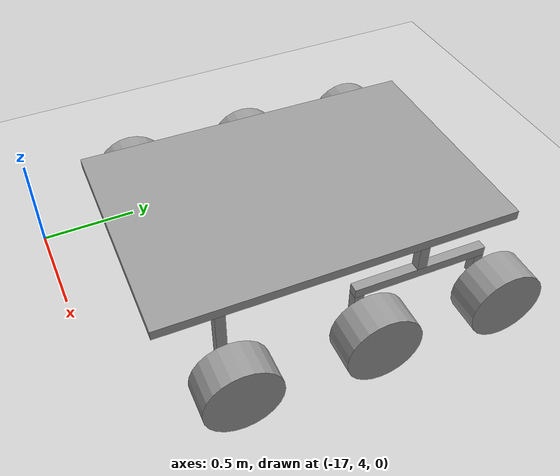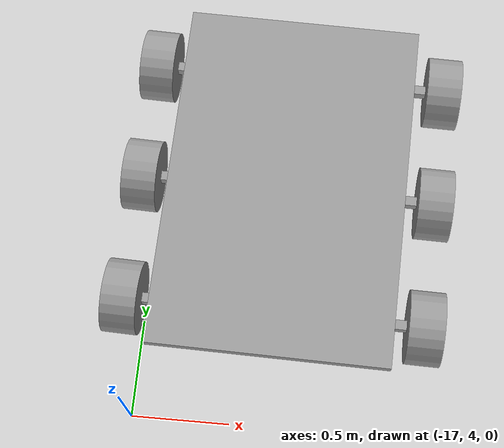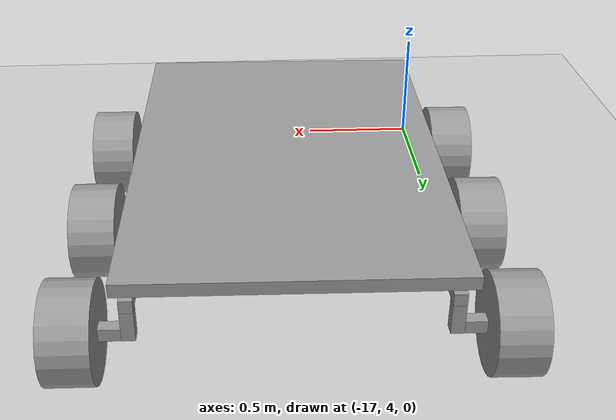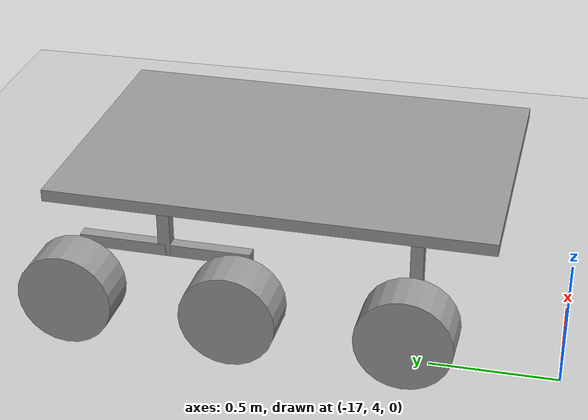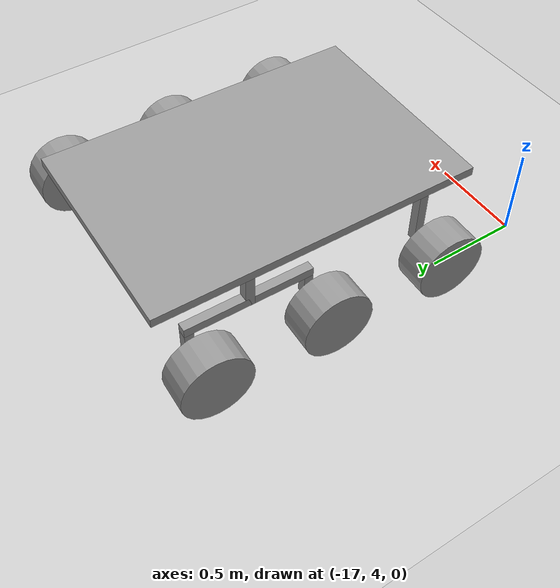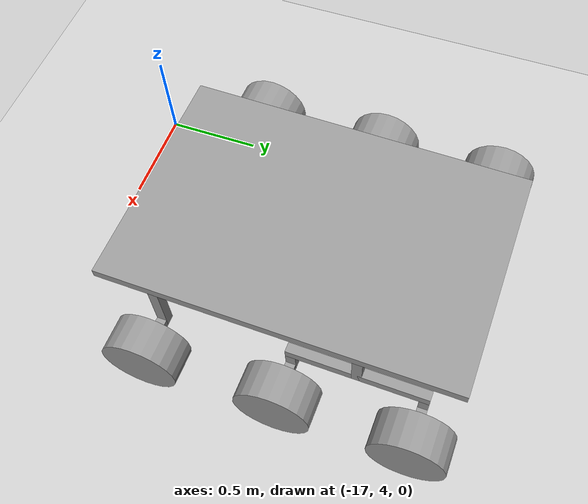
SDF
<sdf version="1.6">
 <world name="default">
  <model name="ground_plane">
   <static>1</static>
   <link name="link">
    <collision name="collision">
     <geometry><plane><normal>0 0 1</normal><size>100 100</size></plane></geometry>
     <surface><friction><ode><mu>100</mu><mu2>50</mu2></ode></friction></surface>
    </collision>
    <visual name="visual">
     <cast_shadows>0</cast_shadows>
     <geometry><plane><normal>0 0 1</normal><size>100 100</size></plane></geometry>
     <material>
      <script><uri>file://media/materials/scripts/gazebo.material</uri><name>Gazebo/Grey</name></script>
     </material>
    </visual>
   </link>
  </model>
  <model name="model1">
   <link name="link_0">
    <inertial>
     <mass>1</mass>
     <inertia>
      <ixx>0.166667</ixx>
      <ixy>0</ixy>
      <ixz>0</ixz>
      <iyy>0.166667</iyy>
      <iyz>0</iyz>
      <izz>0.166667</izz>
     </inertia>
    </inertial>
    <pose>0.453204 0.202085 0.600179 0 -0 0</pose>
    <visual name="visual">
     <geometry><box><size>1.2 1.8 0.05</size></box></geometry>
     <material>
      <lighting>1</lighting>
      <script><uri>file://media/materials/scripts/gazebo.material</uri><name>Gazebo/Grey</name></script>
      <shader type="pixel"><normal_map>__default__</normal_map></shader>
      <ambient>0.3 0.3 0.3 1</ambient>
      <diffuse>0.7 0.7 0.7 1</diffuse>
      <specular>0.01 0.01 0.01 1</specular>
      <emissive>0 0 0 1</emissive>
     </material>
    </visual>
    <collision name="collision">
     <geometry><box><size>1.2 1.8 0.05</size></box></geometry>
     <surface>
      <friction>
       <ode><mu>1</mu><mu2>1</mu2><fdir1>0 0 0</fdir1><slip1>0</slip1><slip2>0</slip2></ode>
       <torsional>
        <coefficient>1</coefficient>
        <patch_radius>0</patch_radius>
        <surface_radius>0</surface_radius>
        <use_patch_radius>1</use_patch_radius>
        <ode><slip>0</slip></ode>
       </torsional>
      </friction>
      <bounce><restitution_coefficient>0</restitution_coefficient><threshold>1e+06</threshold></bounce>
      <contact>
       <collide_without_contact>0</collide_without_contact>
       <collide_without_contact_bitmask>1</collide_without_contact_bitmask>
       <collide_bitmask>1</collide_bitmask>
       <ode>
        <soft_cfm>0</soft_cfm>
        <soft_erp>0.2</soft_erp>
        <kp>1e+13</kp>
        <kd>1</kd>
        <max_vel>0.01</max_vel>
        <min_depth>0</min_depth>
       </ode>
       <bullet>
        <split_impulse>1</split_impulse>
        <split_impulse_penetration_threshold>-0.01</split_impulse_penetration_threshold>
        <soft_cfm>0</soft_cfm>
        <soft_erp>0.2</soft_erp>
        <kp>1e+13</kp>
        <kd>1</kd>
       </bullet>
      </contact>
     </surface>
    </collision>
   </link>
   <link name="link_0_0_clone_clone_1">
    <inertial>
     <mass>1</mass>
     <inertia><ixx>0.145833</ixx><ixy>0</ixy><ixz>0</ixz><iyy>0.145833</iyy><iyz>0</iyz><izz>0.125</izz></inertia>
    </inertial>
    <pose>1.2232 -0.397915 0.300179 -3.14153 1.57079 -3.14153</pose>
    <visual name="visual_0">
     <geometry><cylinder><radius>0.19</radius><length>0.18</length></cylinder></geometry>
     <material>
      <lighting>1</lighting>
      <script><uri>file://media/materials/scripts/gazebo.material</uri><name>Gazebo/Grey</name></script>
      <shader type="pixel"><normal_map>__default__</normal_map></shader>
      <ambient>0.3 0.3 0.3 1</ambient>
      <diffuse>0.7 0.7 0.7 1</diffuse>
      <specular>0.01 0.01 0.01 1</specular>
      <emissive>0 0 0 1</emissive>
     </material>
    </visual>
    <collision name="collision">
     <geometry><cylinder><radius>0.19</radius><length>0.18</length></cylinder></geometry>
     <surface>
      <friction>
       <ode><mu>1</mu><mu2>1</mu2><fdir1>0 0 0</fdir1><slip1>0</slip1><slip2>0</slip2></ode>
       <torsional>
        <coefficient>1</coefficient>
        <patch_radius>0</patch_radius>
        <surface_radius>0</surface_radius>
        <use_patch_radius>1</use_patch_radius>
        <ode><slip>0</slip></ode>
       </torsional>
      </friction>
      <bounce><restitution_coefficient>0</restitution_coefficient><threshold>1e+06</threshold></bounce>
      <contact>
       <collide_without_contact>0</collide_without_contact>
       <collide_without_contact_bitmask>1</collide_without_contact_bitmask>
       <collide_bitmask>1</collide_bitmask>
       <ode>
        <soft_cfm>0</soft_cfm>
        <soft_erp>0.2</soft_erp>
        <kp>1e+13</kp>
        <kd>1</kd>
        <max_vel>0.01</max_vel>
        <min_depth>0</min_depth>
       </ode>
       <bullet>
        <split_impulse>1</split_impulse>
        <split_impulse_penetration_threshold>-0.01</split_impulse_penetration_threshold>
        <soft_cfm>0</soft_cfm>
        <soft_erp>0.2</soft_erp>
        <kp>1e+13</kp>
        <kd>1</kd>
       </bullet>
      </contact>
     </surface>
    </collision>
   </link>
   <link name="link_0_0_clone_clone_1_clone_0">
    <inertial>
     <mass>1</mass>
     <inertia><ixx>0.145833</ixx><ixy>0</ixy><ixz>0</ixz><iyy>0.145833</iyy><iyz>0</iyz><izz>0.125</izz></inertia>
    </inertial>
    <pose>1.2232 0.277085 0.30018 -3.14153 1.57079 -3.14153</pose>
    <visual name="visual_0">
     <geometry><cylinder><radius>0.19</radius><length>0.18</length></cylinder></geometry>
     <material>
      <lighting>1</lighting>
      <script><uri>file://media/materials/scripts/gazebo.material</uri><name>Gazebo/Grey</name></script>
      <shader type="pixel"><normal_map>__default__</normal_map></shader>
      <ambient>0.3 0.3 0.3 1</ambient>
      <diffuse>0.7 0.7 0.7 1</diffuse>
      <specular>0.01 0.01 0.01 1</specular>
      <emissive>0 0 0 1</emissive>
     </material>
    </visual>
    <collision name="collision">
     <geometry><cylinder><radius>0.19</radius><length>0.18</length></cylinder></geometry>
     <surface>
      <friction>
       <ode><mu>1</mu><mu2>1</mu2><fdir1>0 0 0</fdir1><slip1>0</slip1><slip2>0</slip2></ode>
       <torsional>
        <coefficient>1</coefficient>
        <patch_radius>0</patch_radius>
        <surface_radius>0</surface_radius>
        <use_patch_radius>1</use_patch_radius>
        <ode><slip>0</slip></ode>
       </torsional>
      </friction>
      <bounce><restitution_coefficient>0</restitution_coefficient><threshold>1e+06</threshold></bounce>
      <contact>
       <collide_without_contact>0</collide_without_contact>
       <collide_without_contact_bitmask>1</collide_without_contact_bitmask>
       <collide_bitmask>1</collide_bitmask>
       <ode>
        <soft_cfm>0</soft_cfm>
        <soft_erp>0.2</soft_erp>
        <kp>1e+13</kp>
        <kd>1</kd>
        <max_vel>0.01</max_vel>
        <min_depth>0</min_depth>
       </ode>
       <bullet>
        <split_impulse>1</split_impulse>
        <split_impulse_penetration_threshold>-0.01</split_impulse_penetration_threshold>
        <soft_cfm>0</soft_cfm>
        <soft_erp>0.2</soft_erp>
        <kp>1e+13</kp>
        <kd>1</kd>
       </bullet>
      </contact>
     </surface>
    </collision>
   </link>
   <link name="link_0_0_clone_clone_1_clone_1">
    <inertial>
     <mass>1</mass>
     <inertia><ixx>0.145833</ixx><ixy>0</ixy><ixz>0</ixz><iyy>0.145833</iyy><iyz>0</iyz><izz>0.125</izz></inertia>
    </inertial>
    <pose>1.2232 0.927085 0.30018 -3.14153 1.57079 -3.14153</pose>
    <visual name="visual_0">
     <geometry><cylinder><radius>0.19</radius><length>0.18</length></cylinder></geometry>
     <material>
      <lighting>1</lighting>
      <script><uri>file://media/materials/scripts/gazebo.material</uri><name>Gazebo/Grey</name></script>
      <shader type="pixel"><normal_map>__default__</normal_map></shader>
      <ambient>0.3 0.3 0.3 1</ambient>
      <diffuse>0.7 0.7 0.7 1</diffuse>
      <specular>0.01 0.01 0.01 1</specular>
      <emissive>0 0 0 1</emissive>
     </material>
    </visual>
    <collision name="collision">
     <geometry><cylinder><radius>0.19</radius><length>0.18</length></cylinder></geometry>
     <surface>
      <friction>
       <ode><mu>1</mu><mu2>1</mu2><fdir1>0 0 0</fdir1><slip1>0</slip1><slip2>0</slip2></ode>
       <torsional>
        <coefficient>1</coefficient>
        <patch_radius>0</patch_radius>
        <surface_radius>0</surface_radius>
        <use_patch_radius>1</use_patch_radius>
        <ode><slip>0</slip></ode>
       </torsional>
      </friction>
      <bounce><restitution_coefficient>0</restitution_coefficient><threshold>1e+06</threshold></bounce>
      <contact>
       <collide_without_contact>0</collide_without_contact>
       <collide_without_contact_bitmask>1</collide_without_contact_bitmask>
       <collide_bitmask>1</collide_bitmask>
       <ode>
        <soft_cfm>0</soft_cfm>
        <soft_erp>0.2</soft_erp>
        <kp>1e+13</kp>
        <kd>1</kd>
        <max_vel>0.01</max_vel>
        <min_depth>0</min_depth>
       </ode>
       <bullet>
        <split_impulse>1</split_impulse>
        <split_impulse_penetration_threshold>-0.01</split_impulse_penetration_threshold>
        <soft_cfm>0</soft_cfm>
        <soft_erp>0.2</soft_erp>
        <kp>1e+13</kp>
        <kd>1</kd>
       </bullet>
      </contact>
     </surface>
    </collision>
   </link>
   <link name="link_0_0_clone_clone_1_clone_clone_1">
    <inertial>
     <mass>1</mass>
     <inertia><ixx>0.145833</ixx><ixy>0</ixy><ixz>0</ixz><iyy>0.145833</iyy><iyz>0</iyz><izz>0.125</izz></inertia>
    </inertial>
    <pose>-0.319461 -0.397915 0.300179 3.14154 -1.57079 3.12758</pose>
    <visual name="visual_0">
     <geometry><cylinder><radius>0.19</radius><length>0.18</length></cylinder></geometry>
     <material>
      <lighting>1</lighting>
      <script><uri>file://media/materials/scripts/gazebo.material</uri><name>Gazebo/Grey</name></script>
      <shader type="pixel"><normal_map>__default__</normal_map></shader>
      <ambient>0.3 0.3 0.3 1</ambient>
      <diffuse>0.7 0.7 0.7 1</diffuse>
      <specular>0.01 0.01 0.01 1</specular>
      <emissive>0 0 0 1</emissive>
     </material>
    </visual>
    <collision name="collision">
     <geometry><cylinder><radius>0.19</radius><length>0.18</length></cylinder></geometry>
     <surface>
      <friction>
       <ode><mu>1</mu><mu2>1</mu2><fdir1>0 0 0</fdir1><slip1>0</slip1><slip2>0</slip2></ode>
       <torsional>
        <coefficient>1</coefficient>
        <patch_radius>0</patch_radius>
        <surface_radius>0</surface_radius>
        <use_patch_radius>1</use_patch_radius>
        <ode><slip>0</slip></ode>
       </torsional>
      </friction>
      <bounce><restitution_coefficient>0</restitution_coefficient><threshold>1e+06</threshold></bounce>
      <contact>
       <collide_without_contact>0</collide_without_contact>
       <collide_without_contact_bitmask>1</collide_without_contact_bitmask>
       <collide_bitmask>1</collide_bitmask>
       <ode>
        <soft_cfm>0</soft_cfm>
        <soft_erp>0.2</soft_erp>
        <kp>1e+13</kp>
        <kd>1</kd>
        <max_vel>0.01</max_vel>
        <min_depth>0</min_depth>
       </ode>
       <bullet>
        <split_impulse>1</split_impulse>
        <split_impulse_penetration_threshold>-0.01</split_impulse_penetration_threshold>
        <soft_cfm>0</soft_cfm>
        <soft_erp>0.2</soft_erp>
        <kp>1e+13</kp>
        <kd>1</kd>
       </bullet>
      </contact>
     </surface>
    </collision>
   </link>
   <link name="link_0_0_clone_clone_1_clone_clone_1_clone">
    <inertial>
     <mass>1</mass>
     <inertia><ixx>0.145833</ixx><ixy>0</ixy><ixz>0</ixz><iyy>0.145833</iyy><iyz>0</iyz><izz>0.125</izz></inertia>
    </inertial>
    <pose>-0.319461 0.277085 0.30018 3.14154 -1.57079 3.12758</pose>
    <visual name="visual_0">
     <geometry><cylinder><radius>0.19</radius><length>0.18</length></cylinder></geometry>
     <material>
      <lighting>1</lighting>
      <script><uri>file://media/materials/scripts/gazebo.material</uri><name>Gazebo/Grey</name></script>
      <shader type="pixel"><normal_map>__default__</normal_map></shader>
      <ambient>0.3 0.3 0.3 1</ambient>
      <diffuse>0.7 0.7 0.7 1</diffuse>
      <specular>0.01 0.01 0.01 1</specular>
      <emissive>0 0 0 1</emissive>
     </material>
    </visual>
    <collision name="collision">
     <geometry><cylinder><radius>0.19</radius><length>0.18</length></cylinder></geometry>
     <surface>
      <friction>
       <ode><mu>1</mu><mu2>1</mu2><fdir1>0 0 0</fdir1><slip1>0</slip1><slip2>0</slip2></ode>
       <torsional>
        <coefficient>1</coefficient>
        <patch_radius>0</patch_radius>
        <surface_radius>0</surface_radius>
        <use_patch_radius>1</use_patch_radius>
        <ode><slip>0</slip></ode>
       </torsional>
      </friction>
      <bounce><restitution_coefficient>0</restitution_coefficient><threshold>1e+06</threshold></bounce>
      <contact>
       <collide_without_contact>0</collide_without_contact>
       <collide_without_contact_bitmask>1</collide_without_contact_bitmask>
       <collide_bitmask>1</collide_bitmask>
       <ode>
        <soft_cfm>0</soft_cfm>
        <soft_erp>0.2</soft_erp>
        <kp>1e+13</kp>
        <kd>1</kd>
        <max_vel>0.01</max_vel>
        <min_depth>0</min_depth>
       </ode>
       <bullet>
        <split_impulse>1</split_impulse>
        <split_impulse_penetration_threshold>-0.01</split_impulse_penetration_threshold>
        <soft_cfm>0</soft_cfm>
        <soft_erp>0.2</soft_erp>
        <kp>1e+13</kp>
        <kd>1</kd>
       </bullet>
      </contact>
     </surface>
    </collision>
   </link>
   <link name="link_0_0_clone_clone_1_clone_clone_1_clone_0">
    <inertial>
     <mass>1</mass>
     <inertia><ixx>0.145833</ixx><ixy>0</ixy><ixz>0</ixz><iyy>0.145833</iyy><iyz>0</iyz><izz>0.125</izz></inertia>
    </inertial>
    <pose>-0.319461 0.927085 0.30018 3.14154 -1.57079 3.12758</pose>
    <visual name="visual_0">
     <geometry><cylinder><radius>0.19</radius><length>0.18</length></cylinder></geometry>
     <material>
      <lighting>1</lighting>
      <script><uri>file://media/materials/scripts/gazebo.material</uri><name>Gazebo/Grey</name></script>
      <shader type="pixel"><normal_map>__default__</normal_map></shader>
      <ambient>0.3 0.3 0.3 1</ambient>
      <diffuse>0.7 0.7 0.7 1</diffuse>
      <specular>0.01 0.01 0.01 1</specular>
      <emissive>0 0 0 1</emissive>
     </material>
    </visual>
    <collision name="collision">
     <geometry><cylinder><radius>0.19</radius><length>0.18</length></cylinder></geometry>
     <surface>
      <friction>
       <ode><mu>1</mu><mu2>1</mu2><fdir1>0 0 0</fdir1><slip1>0</slip1><slip2>0</slip2></ode>
       <torsional>
        <coefficient>1</coefficient>
        <patch_radius>0</patch_radius>
        <surface_radius>0</surface_radius>
        <use_patch_radius>1</use_patch_radius>
        <ode><slip>0</slip></ode>
       </torsional>
      </friction>
      <bounce><restitution_coefficient>0</restitution_coefficient><threshold>1e+06</threshold></bounce>
      <contact>
       <collide_without_contact>0</collide_without_contact>
       <collide_without_contact_bitmask>1</collide_without_contact_bitmask>
       <collide_bitmask>1</collide_bitmask>
       <ode>
        <soft_cfm>0</soft_cfm>
        <soft_erp>0.2</soft_erp>
        <kp>1e+13</kp>
        <kd>1</kd>
        <max_vel>0.01</max_vel>
        <min_depth>0</min_depth>
       </ode>
       <bullet>
        <split_impulse>1</split_impulse>
        <split_impulse_penetration_threshold>-0.01</split_impulse_penetration_threshold>
        <soft_cfm>0</soft_cfm>
        <soft_erp>0.2</soft_erp>
        <kp>1e+13</kp>
        <kd>1</kd>
       </bullet>
      </contact>
     </surface>
    </collision>
   </link>
   <link name="link_1_clone">
    <inertial>
     <mass>1</mass>
     <inertia>
      <ixx>0.166667</ixx>
      <ixy>0</ixy>
      <ixz>0</ixz>
      <iyy>0.166667</iyy>
      <iyz>0</iyz>
      <izz>0.166667</izz>
     </inertia>
    </inertial>
    <pose>-0.121796 0.602085 0.485179 0 -0 0</pose>
    <visual name="visual">
     <geometry><box><size>0.05 0.05 0.18</size></box></geometry>
     <material>
      <lighting>1</lighting>
      <script><uri>file://media/materials/scripts/gazebo.material</uri><name>Gazebo/Grey</name></script>
      <shader type="pixel"><normal_map>__default__</normal_map></shader>
      <ambient>0.3 0.3 0.3 1</ambient>
      <diffuse>0.7 0.7 0.7 1</diffuse>
      <specular>0.01 0.01 0.01 1</specular>
      <emissive>0 0 0 1</emissive>
     </material>
    </visual>
    <collision name="collision">
     <geometry><box><size>0.05 0.05 0.18</size></box></geometry>
     <surface>
      <friction>
       <ode><mu>1</mu><mu2>1</mu2><fdir1>0 0 0</fdir1><slip1>0</slip1><slip2>0</slip2></ode>
       <torsional>
        <coefficient>1</coefficient>
        <patch_radius>0</patch_radius>
        <surface_radius>0</surface_radius>
        <use_patch_radius>1</use_patch_radius>
        <ode><slip>0</slip></ode>
       </torsional>
      </friction>
      <bounce><restitution_coefficient>0</restitution_coefficient><threshold>1e+06</threshold></bounce>
      <contact>
       <collide_without_contact>0</collide_without_contact>
       <collide_without_contact_bitmask>1</collide_without_contact_bitmask>
       <collide_bitmask>1</collide_bitmask>
       <ode>
        <soft_cfm>0</soft_cfm>
        <soft_erp>0.2</soft_erp>
        <kp>1e+13</kp>
        <kd>1</kd>
        <max_vel>0.01</max_vel>
        <min_depth>0</min_depth>
       </ode>
       <bullet>
        <split_impulse>1</split_impulse>
        <split_impulse_penetration_threshold>-0.01</split_impulse_penetration_threshold>
        <soft_cfm>0</soft_cfm>
        <soft_erp>0.2</soft_erp>
        <kp>1e+13</kp>
        <kd>1</kd>
       </bullet>
      </contact>
     </surface>
    </collision>
   </link>
   <link name="link_1_clone_0">
    <inertial>
     <mass>1</mass>
     <inertia>
      <ixx>0.166667</ixx>
      <ixy>0</ixy>
      <ixz>0</ixz>
      <iyy>0.166667</iyy>
      <iyz>0</iyz>
      <izz>0.166667</izz>
     </inertia>
    </inertial>
    <pose>1.0282 -0.397915 0.425179 0 -0 0</pose>
    <visual name="visual">
     <geometry><box><size>0.05 0.05 0.3</size></box></geometry>
     <material>
      <lighting>1</lighting>
      <script><uri>file://media/materials/scripts/gazebo.material</uri><name>Gazebo/Grey</name></script>
      <shader type="pixel"><normal_map>__default__</normal_map></shader>
      <ambient>0.3 0.3 0.3 1</ambient>
      <diffuse>0.7 0.7 0.7 1</diffuse>
      <specular>0.01 0.01 0.01 1</specular>
      <emissive>0 0 0 1</emissive>
     </material>
    </visual>
    <collision name="collision">
     <geometry><box><size>0.05 0.05 0.3</size></box></geometry>
     <surface>
      <friction>
       <ode><mu>1</mu><mu2>1</mu2><fdir1>0 0 0</fdir1><slip1>0</slip1><slip2>0</slip2></ode>
       <torsional>
        <coefficient>1</coefficient>
        <patch_radius>0</patch_radius>
        <surface_radius>0</surface_radius>
        <use_patch_radius>1</use_patch_radius>
        <ode><slip>0</slip></ode>
       </torsional>
      </friction>
      <bounce><restitution_coefficient>0</restitution_coefficient><threshold>1e+06</threshold></bounce>
      <contact>
       <collide_without_contact>0</collide_without_contact>
       <collide_without_contact_bitmask>1</collide_without_contact_bitmask>
       <collide_bitmask>1</collide_bitmask>
       <ode>
        <soft_cfm>0</soft_cfm>
        <soft_erp>0.2</soft_erp>
        <kp>1e+13</kp>
        <kd>1</kd>
        <max_vel>0.01</max_vel>
        <min_depth>0</min_depth>
       </ode>
       <bullet>
        <split_impulse>1</split_impulse>
        <split_impulse_penetration_threshold>-0.01</split_impulse_penetration_threshold>
        <soft_cfm>0</soft_cfm>
        <soft_erp>0.2</soft_erp>
        <kp>1e+13</kp>
        <kd>1</kd>
       </bullet>
      </contact>
     </surface>
    </collision>
   </link>
   <link name="link_1_clone_0_clone">
    <inertial>
     <mass>1</mass>
     <inertia>
      <ixx>0.166667</ixx>
      <ixy>0</ixy>
      <ixz>0</ixz>
      <iyy>0.166667</iyy>
      <iyz>0</iyz>
      <izz>0.166667</izz>
     </inertia>
    </inertial>
    <pose>1.0282 0.602085 0.485179 3.14159 -0 0</pose>
    <visual name="visual">
     <geometry><box><size>0.05 0.05 0.18</size></box></geometry>
     <material>
      <lighting>1</lighting>
      <script><uri>file://media/materials/scripts/gazebo.material</uri><name>Gazebo/Grey</name></script>
      <shader type="pixel"><normal_map>__default__</normal_map></shader>
      <ambient>0.3 0.3 0.3 1</ambient>
      <diffuse>0.7 0.7 0.7 1</diffuse>
      <specular>0.01 0.01 0.01 1</specular>
      <emissive>0 0 0 1</emissive>
     </material>
    </visual>
    <collision name="collision">
     <geometry><box><size>0.05 0.05 0.18</size></box></geometry>
     <surface>
      <friction>
       <ode><mu>1</mu><mu2>1</mu2><fdir1>0 0 0</fdir1><slip1>0</slip1><slip2>0</slip2></ode>
       <torsional>
        <coefficient>1</coefficient>
        <patch_radius>0</patch_radius>
        <surface_radius>0</surface_radius>
        <use_patch_radius>1</use_patch_radius>
        <ode><slip>0</slip></ode>
       </torsional>
      </friction>
      <bounce><restitution_coefficient>0</restitution_coefficient><threshold>1e+06</threshold></bounce>
      <contact>
       <collide_without_contact>0</collide_without_contact>
       <collide_without_contact_bitmask>1</collide_without_contact_bitmask>
       <collide_bitmask>1</collide_bitmask>
       <ode>
        <soft_cfm>0</soft_cfm>
        <soft_erp>0.2</soft_erp>
        <kp>1e+13</kp>
        <kd>1</kd>
        <max_vel>0.01</max_vel>
        <min_depth>0</min_depth>
       </ode>
       <bullet>
        <split_impulse>1</split_impulse>
        <split_impulse_penetration_threshold>-0.01</split_impulse_penetration_threshold>
        <soft_cfm>0</soft_cfm>
        <soft_erp>0.2</soft_erp>
        <kp>1e+13</kp>
        <kd>1</kd>
       </bullet>
      </contact>
     </surface>
    </collision>
   </link>
   <link name="link_1_clone_1">
    <inertial>
     <mass>1</mass>
     <inertia>
      <ixx>0.166667</ixx>
      <ixy>0</ixy>
      <ixz>0</ixz>
      <iyy>0.166667</iyy>
      <iyz>0</iyz>
      <izz>0.166667</izz>
     </inertia>
    </inertial>
    <pose>-0.121796 -0.397915 0.425179 0 -0 0</pose>
    <visual name="visual">
     <geometry><box><size>0.05 0.05 0.3</size></box></geometry>
     <material>
      <lighting>1</lighting>
      <script><uri>file://media/materials/scripts/gazebo.material</uri><name>Gazebo/Grey</name></script>
      <shader type="pixel"><normal_map>__default__</normal_map></shader>
      <ambient>0.3 0.3 0.3 1</ambient>
      <diffuse>0.7 0.7 0.7 1</diffuse>
      <specular>0.01 0.01 0.01 1</specular>
      <emissive>0 0 0 1</emissive>
     </material>
    </visual>
    <collision name="collision">
     <geometry><box><size>0.05 0.05 0.3</size></box></geometry>
     <surface>
      <friction>
       <ode><mu>1</mu><mu2>1</mu2><fdir1>0 0 0</fdir1><slip1>0</slip1><slip2>0</slip2></ode>
       <torsional>
        <coefficient>1</coefficient>
        <patch_radius>0</patch_radius>
        <surface_radius>0</surface_radius>
        <use_patch_radius>1</use_patch_radius>
        <ode><slip>0</slip></ode>
       </torsional>
      </friction>
      <bounce><restitution_coefficient>0</restitution_coefficient><threshold>1e+06</threshold></bounce>
      <contact>
       <collide_without_contact>0</collide_without_contact>
       <collide_without_contact_bitmask>1</collide_without_contact_bitmask>
       <collide_bitmask>1</collide_bitmask>
       <ode>
        <soft_cfm>0</soft_cfm>
        <soft_erp>0.2</soft_erp>
        <kp>1e+13</kp>
        <kd>1</kd>
        <max_vel>0.01</max_vel>
        <min_depth>0</min_depth>
       </ode>
       <bullet>
        <split_impulse>1</split_impulse>
        <split_impulse_penetration_threshold>-0.01</split_impulse_penetration_threshold>
        <soft_cfm>0</soft_cfm>
        <soft_erp>0.2</soft_erp>
        <kp>1e+13</kp>
        <kd>1</kd>
       </bullet>
      </contact>
     </surface>
    </collision>
   </link>
   <link name="link_1_clone_2">
    <inertial>
     <mass>1</mass>
     <inertia>
      <ixx>0.166667</ixx>
      <ixy>0</ixy>
      <ixz>0</ixz>
      <iyy>0.166667</iyy>
      <iyz>0</iyz>
      <izz>0.166667</izz>
     </inertia>
    </inertial>
    <pose>1.0282 0.927085 0.33518 0 -0 0</pose>
    <visual name="visual">
     <geometry><box><size>0.05 0.05 0.12</size></box></geometry>
     <material>
      <lighting>1</lighting>
      <script><uri>file://media/materials/scripts/gazebo.material</uri><name>Gazebo/Grey</name></script>
      <shader type="pixel"><normal_map>__default__</normal_map></shader>
      <ambient>0.3 0.3 0.3 1</ambient>
      <diffuse>0.7 0.7 0.7 1</diffuse>
      <specular>0.01 0.01 0.01 1</specular>
      <emissive>0 0 0 1</emissive>
     </material>
    </visual>
    <collision name="collision">
     <geometry><box><size>0.05 0.05 0.12</size></box></geometry>
     <surface>
      <friction>
       <ode><mu>1</mu><mu2>1</mu2><fdir1>0 0 0</fdir1><slip1>0</slip1><slip2>0</slip2></ode>
       <torsional>
        <coefficient>1</coefficient>
        <patch_radius>0</patch_radius>
        <surface_radius>0</surface_radius>
        <use_patch_radius>1</use_patch_radius>
        <ode><slip>0</slip></ode>
       </torsional>
      </friction>
      <bounce><restitution_coefficient>0</restitution_coefficient><threshold>1e+06</threshold></bounce>
      <contact>
       <collide_without_contact>0</collide_without_contact>
       <collide_without_contact_bitmask>1</collide_without_contact_bitmask>
       <collide_bitmask>1</collide_bitmask>
       <ode>
        <soft_cfm>0</soft_cfm>
        <soft_erp>0.2</soft_erp>
        <kp>1e+13</kp>
        <kd>1</kd>
        <max_vel>0.01</max_vel>
        <min_depth>0</min_depth>
       </ode>
       <bullet>
        <split_impulse>1</split_impulse>
        <split_impulse_penetration_threshold>-0.01</split_impulse_penetration_threshold>
        <soft_cfm>0</soft_cfm>
        <soft_erp>0.2</soft_erp>
        <kp>1e+13</kp>
        <kd>1</kd>
       </bullet>
      </contact>
     </surface>
    </collision>
   </link>
   <link name="link_1_clone_3">
    <inertial>
     <mass>1</mass>
     <inertia>
      <ixx>0.166667</ixx>
      <ixy>0</ixy>
      <ixz>0</ixz>
      <iyy>0.166667</iyy>
      <iyz>0</iyz>
      <izz>0.166667</izz>
     </inertia>
    </inertial>
    <pose>1.0282 0.277085 0.33518 0 -0 0</pose>
    <visual name="visual">
     <geometry><box><size>0.05 0.05 0.12</size></box></geometry>
     <material>
      <lighting>1</lighting>
      <script><uri>file://media/materials/scripts/gazebo.material</uri><name>Gazebo/Grey</name></script>
      <shader type="pixel"><normal_map>__default__</normal_map></shader>
      <ambient>0.3 0.3 0.3 1</ambient>
      <diffuse>0.7 0.7 0.7 1</diffuse>
      <specular>0.01 0.01 0.01 1</specular>
      <emissive>0 0 0 1</emissive>
     </material>
    </visual>
    <collision name="collision">
     <geometry><box><size>0.05 0.05 0.12</size></box></geometry>
     <surface>
      <friction>
       <ode><mu>1</mu><mu2>1</mu2><fdir1>0 0 0</fdir1><slip1>0</slip1><slip2>0</slip2></ode>
       <torsional>
        <coefficient>1</coefficient>
        <patch_radius>0</patch_radius>
        <surface_radius>0</surface_radius>
        <use_patch_radius>1</use_patch_radius>
        <ode><slip>0</slip></ode>
       </torsional>
      </friction>
      <bounce><restitution_coefficient>0</restitution_coefficient><threshold>1e+06</threshold></bounce>
      <contact>
       <collide_without_contact>0</collide_without_contact>
       <collide_without_contact_bitmask>1</collide_without_contact_bitmask>
       <collide_bitmask>1</collide_bitmask>
       <ode>
        <soft_cfm>0</soft_cfm>
        <soft_erp>0.2</soft_erp>
        <kp>1e+13</kp>
        <kd>1</kd>
        <max_vel>0.01</max_vel>
        <min_depth>0</min_depth>
       </ode>
       <bullet>
        <split_impulse>1</split_impulse>
        <split_impulse_penetration_threshold>-0.01</split_impulse_penetration_threshold>
        <soft_cfm>0</soft_cfm>
        <soft_erp>0.2</soft_erp>
        <kp>1e+13</kp>
        <kd>1</kd>
       </bullet>
      </contact>
     </surface>
    </collision>
   </link>
   <link name="link_1_clone_3_clone">
    <inertial>
     <mass>1</mass>
     <inertia>
      <ixx>0.166667</ixx>
      <ixy>0</ixy>
      <ixz>0</ixz>
      <iyy>0.166667</iyy>
      <iyz>0</iyz>
      <izz>0.166667</izz>
     </inertia>
    </inertial>
    <pose>-0.121796 0.927085 0.33518 0 -0 0</pose>
    <visual name="visual">
     <geometry><box><size>0.05 0.05 0.12</size></box></geometry>
     <material>
      <lighting>1</lighting>
      <script><uri>file://media/materials/scripts/gazebo.material</uri><name>Gazebo/Grey</name></script>
      <shader type="pixel"><normal_map>__default__</normal_map></shader>
      <ambient>0.3 0.3 0.3 1</ambient>
      <diffuse>0.7 0.7 0.7 1</diffuse>
      <specular>0.01 0.01 0.01 1</specular>
      <emissive>0 0 0 1</emissive>
     </material>
    </visual>
    <collision name="collision">
     <geometry><box><size>0.05 0.05 0.12</size></box></geometry>
     <surface>
      <friction>
       <ode><mu>1</mu><mu2>1</mu2><fdir1>0 0 0</fdir1><slip1>0</slip1><slip2>0</slip2></ode>
       <torsional>
        <coefficient>1</coefficient>
        <patch_radius>0</patch_radius>
        <surface_radius>0</surface_radius>
        <use_patch_radius>1</use_patch_radius>
        <ode><slip>0</slip></ode>
       </torsional>
      </friction>
      <bounce><restitution_coefficient>0</restitution_coefficient><threshold>1e+06</threshold></bounce>
      <contact>
       <collide_without_contact>0</collide_without_contact>
       <collide_without_contact_bitmask>1</collide_without_contact_bitmask>
       <collide_bitmask>1</collide_bitmask>
       <ode>
        <soft_cfm>0</soft_cfm>
        <soft_erp>0.2</soft_erp>
        <kp>1e+13</kp>
        <kd>1</kd>
        <max_vel>0.01</max_vel>
        <min_depth>0</min_depth>
       </ode>
       <bullet>
        <split_impulse>1</split_impulse>
        <split_impulse_penetration_threshold>-0.01</split_impulse_penetration_threshold>
        <soft_cfm>0</soft_cfm>
        <soft_erp>0.2</soft_erp>
        <kp>1e+13</kp>
        <kd>1</kd>
       </bullet>
      </contact>
     </surface>
    </collision>
   </link>
   <link name="link_1_clone_3_clone_0">
    <inertial>
     <mass>1</mass>
     <inertia>
      <ixx>0.166667</ixx>
      <ixy>0</ixy>
      <ixz>0</ixz>
      <iyy>0.166667</iyy>
      <iyz>0</iyz>
      <izz>0.166667</izz>
     </inertia>
    </inertial>
    <pose>-0.121796 0.277085 0.33518 0 -0 0</pose>
    <visual name="visual">
     <geometry><box><size>0.05 0.05 0.12</size></box></geometry>
     <material>
      <lighting>1</lighting>
      <script><uri>file://media/materials/scripts/gazebo.material</uri><name>Gazebo/Grey</name></script>
      <shader type="pixel"><normal_map>__default__</normal_map></shader>
      <ambient>0.3 0.3 0.3 1</ambient>
      <diffuse>0.7 0.7 0.7 1</diffuse>
      <specular>0.01 0.01 0.01 1</specular>
      <emissive>0 0 0 1</emissive>
     </material>
    </visual>
    <collision name="collision">
     <geometry><box><size>0.05 0.05 0.12</size></box></geometry>
     <surface>
      <friction>
       <ode><mu>1</mu><mu2>1</mu2><fdir1>0 0 0</fdir1><slip1>0</slip1><slip2>0</slip2></ode>
       <torsional>
        <coefficient>1</coefficient>
        <patch_radius>0</patch_radius>
        <surface_radius>0</surface_radius>
        <use_patch_radius>1</use_patch_radius>
        <ode><slip>0</slip></ode>
       </torsional>
      </friction>
      <bounce><restitution_coefficient>0</restitution_coefficient><threshold>1e+06</threshold></bounce>
      <contact>
       <collide_without_contact>0</collide_without_contact>
       <collide_without_contact_bitmask>1</collide_without_contact_bitmask>
       <collide_bitmask>1</collide_bitmask>
       <ode>
        <soft_cfm>0</soft_cfm>
        <soft_erp>0.2</soft_erp>
        <kp>1e+13</kp>
        <kd>1</kd>
        <max_vel>0.01</max_vel>
        <min_depth>0</min_depth>
       </ode>
       <bullet>
        <split_impulse>1</split_impulse>
        <split_impulse_penetration_threshold>-0.01</split_impulse_penetration_threshold>
        <soft_cfm>0</soft_cfm>
        <soft_erp>0.2</soft_erp>
        <kp>1e+13</kp>
        <kd>1</kd>
       </bullet>
      </contact>
     </surface>
    </collision>
   </link>
   <link name="link_2">
    <inertial>
     <mass>1</mass>
     <inertia>
      <ixx>0.166667</ixx>
      <ixy>0</ixy>
      <ixz>0</ixz>
      <iyy>0.166667</iyy>
      <iyz>0</iyz>
      <izz>0.166667</izz>
     </inertia>
    </inertial>
    <pose>1.0282 0.602085 0.42018 0 -0 0</pose>
    <visual name="visual">
     <geometry><box><size>0.05 0.7 0.05</size></box></geometry>
     <material>
      <lighting>1</lighting>
      <script><uri>file://media/materials/scripts/gazebo.material</uri><name>Gazebo/Grey</name></script>
      <shader type="pixel"><normal_map>__default__</normal_map></shader>
      <ambient>0.3 0.3 0.3 1</ambient>
      <diffuse>0.7 0.7 0.7 1</diffuse>
      <specular>0.01 0.01 0.01 1</specular>
      <emissive>0 0 0 1</emissive>
     </material>
    </visual>
    <collision name="collision">
     <geometry><box><size>0.05 0.7 0.05</size></box></geometry>
     <surface>
      <friction>
       <ode><mu>1</mu><mu2>1</mu2><fdir1>0 0 0</fdir1><slip1>0</slip1><slip2>0</slip2></ode>
       <torsional>
        <coefficient>1</coefficient>
        <patch_radius>0</patch_radius>
        <surface_radius>0</surface_radius>
        <use_patch_radius>1</use_patch_radius>
        <ode><slip>0</slip></ode>
       </torsional>
      </friction>
      <bounce><restitution_coefficient>0</restitution_coefficient><threshold>1e+06</threshold></bounce>
      <contact>
       <collide_without_contact>0</collide_without_contact>
       <collide_without_contact_bitmask>1</collide_without_contact_bitmask>
       <collide_bitmask>1</collide_bitmask>
       <ode>
        <soft_cfm>0</soft_cfm>
        <soft_erp>0.2</soft_erp>
        <kp>1e+13</kp>
        <kd>1</kd>
        <max_vel>0.01</max_vel>
        <min_depth>0</min_depth>
       </ode>
       <bullet>
        <split_impulse>1</split_impulse>
        <split_impulse_penetration_threshold>-0.01</split_impulse_penetration_threshold>
        <soft_cfm>0</soft_cfm>
        <soft_erp>0.2</soft_erp>
        <kp>1e+13</kp>
        <kd>1</kd>
       </bullet>
      </contact>
     </surface>
    </collision>
   </link>
   <link name="link_2_clone">
    <inertial>
     <mass>1</mass>
     <inertia>
      <ixx>0.166667</ixx>
      <ixy>0</ixy>
      <ixz>0</ixz>
      <iyy>0.166667</iyy>
      <iyz>0</iyz>
      <izz>0.166667</izz>
     </inertia>
    </inertial>
    <pose>-0.121796 0.602085 0.42018 0 -0 0</pose>
    <visual name="visual">
     <geometry><box><size>0.05 0.7 0.05</size></box></geometry>
     <material>
      <lighting>1</lighting>
      <script><uri>file://media/materials/scripts/gazebo.material</uri><name>Gazebo/Grey</name></script>
      <shader type="pixel"><normal_map>__default__</normal_map></shader>
      <ambient>0.3 0.3 0.3 1</ambient>
      <diffuse>0.7 0.7 0.7 1</diffuse>
      <specular>0.01 0.01 0.01 1</specular>
      <emissive>0 0 0 1</emissive>
     </material>
    </visual>
    <collision name="collision">
     <geometry><box><size>0.05 0.7 0.05</size></box></geometry>
     <surface>
      <friction>
       <ode><mu>1</mu><mu2>1</mu2><fdir1>0 0 0</fdir1><slip1>0</slip1><slip2>0</slip2></ode>
       <torsional>
        <coefficient>1</coefficient>
        <patch_radius>0</patch_radius>
        <surface_radius>0</surface_radius>
        <use_patch_radius>1</use_patch_radius>
        <ode><slip>0</slip></ode>
       </torsional>
      </friction>
      <bounce><restitution_coefficient>0</restitution_coefficient><threshold>1e+06</threshold></bounce>
      <contact>
       <collide_without_contact>0</collide_without_contact>
       <collide_without_contact_bitmask>1</collide_without_contact_bitmask>
       <collide_bitmask>1</collide_bitmask>
       <ode>
        <soft_cfm>0</soft_cfm>
        <soft_erp>0.2</soft_erp>
        <kp>1e+13</kp>
        <kd>1</kd>
        <max_vel>0.01</max_vel>
        <min_depth>0</min_depth>
       </ode>
       <bullet>
        <split_impulse>1</split_impulse>
        <split_impulse_penetration_threshold>-0.01</split_impulse_penetration_threshold>
        <soft_cfm>0</soft_cfm>
        <soft_erp>0.2</soft_erp>
        <kp>1e+13</kp>
        <kd>1</kd>
       </bullet>
      </contact>
     </surface>
    </collision>
   </link>
   <link name="link_4_clone_0_clone">
    <inertial>
     <mass>1</mass>
     <inertia>
      <ixx>0.166667</ixx>
      <ixy>0</ixy>
      <ixz>0</ixz>
      <iyy>0.166667</iyy>
      <iyz>0</iyz>
      <izz>0.166667</izz>
     </inertia>
    </inertial>
    <pose>1.0932 0.927085 0.30018 0 -0 0</pose>
    <visual name="visual">
     <geometry><box><size>0.08 0.05 0.05</size></box></geometry>
     <material>
      <lighting>1</lighting>
      <script><uri>file://media/materials/scripts/gazebo.material</uri><name>Gazebo/Grey</name></script>
      <shader type="pixel"><normal_map>__default__</normal_map></shader>
      <ambient>0.3 0.3 0.3 1</ambient>
      <diffuse>0.7 0.7 0.7 1</diffuse>
      <specular>0.01 0.01 0.01 1</specular>
      <emissive>0 0 0 1</emissive>
     </material>
    </visual>
    <collision name="collision">
     <geometry><box><size>0.08 0.05 0.05</size></box></geometry>
     <surface>
      <friction>
       <ode><mu>1</mu><mu2>1</mu2><fdir1>0 0 0</fdir1><slip1>0</slip1><slip2>0</slip2></ode>
       <torsional>
        <coefficient>1</coefficient>
        <patch_radius>0</patch_radius>
        <surface_radius>0</surface_radius>
        <use_patch_radius>1</use_patch_radius>
        <ode><slip>0</slip></ode>
       </torsional>
      </friction>
      <bounce><restitution_coefficient>0</restitution_coefficient><threshold>1e+06</threshold></bounce>
      <contact>
       <collide_without_contact>0</collide_without_contact>
       <collide_without_contact_bitmask>1</collide_without_contact_bitmask>
       <collide_bitmask>1</collide_bitmask>
       <ode>
        <soft_cfm>0</soft_cfm>
        <soft_erp>0.2</soft_erp>
        <kp>1e+13</kp>
        <kd>1</kd>
        <max_vel>0.01</max_vel>
        <min_depth>0</min_depth>
       </ode>
       <bullet>
        <split_impulse>1</split_impulse>
        <split_impulse_penetration_threshold>-0.01</split_impulse_penetration_threshold>
        <soft_cfm>0</soft_cfm>
        <soft_erp>0.2</soft_erp>
        <kp>1e+13</kp>
        <kd>1</kd>
       </bullet>
      </contact>
     </surface>
    </collision>
   </link>
   <link name="link_4_clone_0_clone_clone">
    <inertial>
     <mass>1</mass>
     <inertia>
      <ixx>0.166667</ixx>
      <ixy>0</ixy>
      <ixz>0</ixz>
      <iyy>0.166667</iyy>
      <iyz>0</iyz>
      <izz>0.166667</izz>
     </inertia>
    </inertial>
    <pose>1.0932 0.277085 0.30018 0 -0 0</pose>
    <visual name="visual">
     <geometry><box><size>0.08 0.05 0.05</size></box></geometry>
     <material>
      <lighting>1</lighting>
      <script><uri>file://media/materials/scripts/gazebo.material</uri><name>Gazebo/Grey</name></script>
      <shader type="pixel"><normal_map>__default__</normal_map></shader>
      <ambient>0.3 0.3 0.3 1</ambient>
      <diffuse>0.7 0.7 0.7 1</diffuse>
      <specular>0.01 0.01 0.01 1</specular>
      <emissive>0 0 0 1</emissive>
     </material>
    </visual>
    <collision name="collision">
     <geometry><box><size>0.08 0.05 0.05</size></box></geometry>
     <surface>
      <friction>
       <ode><mu>1</mu><mu2>1</mu2><fdir1>0 0 0</fdir1><slip1>0</slip1><slip2>0</slip2></ode>
       <torsional>
        <coefficient>1</coefficient>
        <patch_radius>0</patch_radius>
        <surface_radius>0</surface_radius>
        <use_patch_radius>1</use_patch_radius>
        <ode><slip>0</slip></ode>
       </torsional>
      </friction>
      <bounce><restitution_coefficient>0</restitution_coefficient><threshold>1e+06</threshold></bounce>
      <contact>
       <collide_without_contact>0</collide_without_contact>
       <collide_without_contact_bitmask>1</collide_without_contact_bitmask>
       <collide_bitmask>1</collide_bitmask>
       <ode>
        <soft_cfm>0</soft_cfm>
        <soft_erp>0.2</soft_erp>
        <kp>1e+13</kp>
        <kd>1</kd>
        <max_vel>0.01</max_vel>
        <min_depth>0</min_depth>
       </ode>
       <bullet>
        <split_impulse>1</split_impulse>
        <split_impulse_penetration_threshold>-0.01</split_impulse_penetration_threshold>
        <soft_cfm>0</soft_cfm>
        <soft_erp>0.2</soft_erp>
        <kp>1e+13</kp>
        <kd>1</kd>
       </bullet>
      </contact>
     </surface>
    </collision>
   </link>
   <link name="link_4_clone_0_clone_clone_0">
    <inertial>
     <mass>1</mass>
     <inertia>
      <ixx>0.166667</ixx>
      <ixy>0</ixy>
      <ixz>0</ixz>
      <iyy>0.166667</iyy>
      <iyz>0</iyz>
      <izz>0.166667</izz>
     </inertia>
    </inertial>
    <pose>-0.186796 0.927085 0.30018 0 -0 0</pose>
    <visual name="visual">
     <geometry><box><size>0.08 0.05 0.05</size></box></geometry>
     <material>
      <lighting>1</lighting>
      <script><uri>file://media/materials/scripts/gazebo.material</uri><name>Gazebo/Grey</name></script>
      <shader type="pixel"><normal_map>__default__</normal_map></shader>
      <ambient>0.3 0.3 0.3 1</ambient>
      <diffuse>0.7 0.7 0.7 1</diffuse>
      <specular>0.01 0.01 0.01 1</specular>
      <emissive>0 0 0 1</emissive>
     </material>
    </visual>
    <collision name="collision">
     <geometry><box><size>0.08 0.05 0.05</size></box></geometry>
     <surface>
      <friction>
       <ode><mu>1</mu><mu2>1</mu2><fdir1>0 0 0</fdir1><slip1>0</slip1><slip2>0</slip2></ode>
       <torsional>
        <coefficient>1</coefficient>
        <patch_radius>0</patch_radius>
        <surface_radius>0</surface_radius>
        <use_patch_radius>1</use_patch_radius>
        <ode><slip>0</slip></ode>
       </torsional>
      </friction>
      <bounce><restitution_coefficient>0</restitution_coefficient><threshold>1e+06</threshold></bounce>
      <contact>
       <collide_without_contact>0</collide_without_contact>
       <collide_without_contact_bitmask>1</collide_without_contact_bitmask>
       <collide_bitmask>1</collide_bitmask>
       <ode>
        <soft_cfm>0</soft_cfm>
        <soft_erp>0.2</soft_erp>
        <kp>1e+13</kp>
        <kd>1</kd>
        <max_vel>0.01</max_vel>
        <min_depth>0</min_depth>
       </ode>
       <bullet>
        <split_impulse>1</split_impulse>
        <split_impulse_penetration_threshold>-0.01</split_impulse_penetration_threshold>
        <soft_cfm>0</soft_cfm>
        <soft_erp>0.2</soft_erp>
        <kp>1e+13</kp>
        <kd>1</kd>
       </bullet>
      </contact>
     </surface>
    </collision>
   </link>
   <link name="link_4_clone_0_clone_clone_1">
    <inertial>
     <mass>1</mass>
     <inertia>
      <ixx>0.166667</ixx>
      <ixy>0</ixy>
      <ixz>0</ixz>
      <iyy>0.166667</iyy>
      <iyz>0</iyz>
      <izz>0.166667</izz>
     </inertia>
    </inertial>
    <pose>-0.186796 0.277085 0.30018 0 -0 0</pose>
    <visual name="visual">
     <geometry><box><size>0.08 0.05 0.05</size></box></geometry>
     <material>
      <lighting>1</lighting>
      <script><uri>file://media/materials/scripts/gazebo.material</uri><name>Gazebo/Grey</name></script>
      <shader type="pixel"><normal_map>__default__</normal_map></shader>
      <ambient>0.3 0.3 0.3 1</ambient>
      <diffuse>0.7 0.7 0.7 1</diffuse>
      <specular>0.01 0.01 0.01 1</specular>
      <emissive>0 0 0 1</emissive>
     </material>
    </visual>
    <collision name="collision">
     <geometry><box><size>0.08 0.05 0.05</size></box></geometry>
     <surface>
      <friction>
       <ode><mu>1</mu><mu2>1</mu2><fdir1>0 0 0</fdir1><slip1>0</slip1><slip2>0</slip2></ode>
       <torsional>
        <coefficient>1</coefficient>
        <patch_radius>0</patch_radius>
        <surface_radius>0</surface_radius>
        <use_patch_radius>1</use_patch_radius>
        <ode><slip>0</slip></ode>
       </torsional>
      </friction>
      <bounce><restitution_coefficient>0</restitution_coefficient><threshold>1e+06</threshold></bounce>
      <contact>
       <collide_without_contact>0</collide_without_contact>
       <collide_without_contact_bitmask>1</collide_without_contact_bitmask>
       <collide_bitmask>1</collide_bitmask>
       <ode>
        <soft_cfm>0</soft_cfm>
        <soft_erp>0.2</soft_erp>
        <kp>1e+13</kp>
        <kd>1</kd>
        <max_vel>0.01</max_vel>
        <min_depth>0</min_depth>
       </ode>
       <bullet>
        <split_impulse>1</split_impulse>
        <split_impulse_penetration_threshold>-0.01</split_impulse_penetration_threshold>
        <soft_cfm>0</soft_cfm>
        <soft_erp>0.2</soft_erp>
        <kp>1e+13</kp>
        <kd>1</kd>
       </bullet>
      </contact>
     </surface>
    </collision>
   </link>
   <link name="link_4_clone_1">
    <inertial>
     <mass>1</mass>
     <inertia>
      <ixx>0.166667</ixx>
      <ixy>0</ixy>
      <ixz>0</ixz>
      <iyy>0.166667</iyy>
      <iyz>0</iyz>
      <izz>0.166667</izz>
     </inertia>
    </inertial>
    <pose>1.0932 -0.397915 0.300179 0 -0 0</pose>
    <visual name="visual">
     <geometry><box><size>0.08 0.05 0.05</size></box></geometry>
     <material>
      <lighting>1</lighting>
      <script><uri>file://media/materials/scripts/gazebo.material</uri><name>Gazebo/Grey</name></script>
      <shader type="pixel"><normal_map>__default__</normal_map></shader>
      <ambient>0.3 0.3 0.3 1</ambient>
      <diffuse>0.7 0.7 0.7 1</diffuse>
      <specular>0.01 0.01 0.01 1</specular>
      <emissive>0 0 0 1</emissive>
     </material>
    </visual>
    <collision name="collision">
     <geometry><box><size>0.08 0.05 0.05</size></box></geometry>
     <surface>
      <friction>
       <ode><mu>1</mu><mu2>1</mu2><fdir1>0 0 0</fdir1><slip1>0</slip1><slip2>0</slip2></ode>
       <torsional>
        <coefficient>1</coefficient>
        <patch_radius>0</patch_radius>
        <surface_radius>0</surface_radius>
        <use_patch_radius>1</use_patch_radius>
        <ode><slip>0</slip></ode>
       </torsional>
      </friction>
      <bounce><restitution_coefficient>0</restitution_coefficient><threshold>1e+06</threshold></bounce>
      <contact>
       <collide_without_contact>0</collide_without_contact>
       <collide_without_contact_bitmask>1</collide_without_contact_bitmask>
       <collide_bitmask>1</collide_bitmask>
       <ode>
        <soft_cfm>0</soft_cfm>
        <soft_erp>0.2</soft_erp>
        <kp>1e+13</kp>
        <kd>1</kd>
        <max_vel>0.01</max_vel>
        <min_depth>0</min_depth>
       </ode>
       <bullet>
        <split_impulse>1</split_impulse>
        <split_impulse_penetration_threshold>-0.01</split_impulse_penetration_threshold>
        <soft_cfm>0</soft_cfm>
        <soft_erp>0.2</soft_erp>
        <kp>1e+13</kp>
        <kd>1</kd>
       </bullet>
      </contact>
     </surface>
    </collision>
   </link>
   <link name="link_4_clone_2">
    <inertial>
     <mass>1</mass>
     <inertia>
      <ixx>0.166667</ixx>
      <ixy>0</ixy>
      <ixz>0</ixz>
      <iyy>0.166667</iyy>
      <iyz>0</iyz>
      <izz>0.166667</izz>
     </inertia>
    </inertial>
    <pose>-0.186796 -0.397915 0.300179 0 -0 0</pose>
    <visual name="visual">
     <geometry><box><size>0.08 0.05 0.05</size></box></geometry>
     <material>
      <lighting>1</lighting>
      <script><uri>file://media/materials/scripts/gazebo.material</uri><name>Gazebo/Grey</name></script>
      <shader type="pixel"><normal_map>__default__</normal_map></shader>
      <ambient>0.3 0.3 0.3 1</ambient>
      <diffuse>0.7 0.7 0.7 1</diffuse>
      <specular>0.01 0.01 0.01 1</specular>
      <emissive>0 0 0 1</emissive>
     </material>
    </visual>
    <collision name="collision">
     <geometry><box><size>0.08 0.05 0.05</size></box></geometry>
     <surface>
      <friction>
       <ode><mu>1</mu><mu2>1</mu2><fdir1>0 0 0</fdir1><slip1>0</slip1><slip2>0</slip2></ode>
       <torsional>
        <coefficient>1</coefficient>
        <patch_radius>0</patch_radius>
        <surface_radius>0</surface_radius>
        <use_patch_radius>1</use_patch_radius>
        <ode><slip>0</slip></ode>
       </torsional>
      </friction>
      <bounce><restitution_coefficient>0</restitution_coefficient><threshold>1e+06</threshold></bounce>
      <contact>
       <collide_without_contact>0</collide_without_contact>
       <collide_without_contact_bitmask>1</collide_without_contact_bitmask>
       <collide_bitmask>1</collide_bitmask>
       <ode>
        <soft_cfm>0</soft_cfm>
        <soft_erp>0.2</soft_erp>
        <kp>1e+13</kp>
        <kd>1</kd>
        <max_vel>0.01</max_vel>
        <min_depth>0</min_depth>
       </ode>
       <bullet>
        <split_impulse>1</split_impulse>
        <split_impulse_penetration_threshold>-0.01</split_impulse_penetration_threshold>
        <soft_cfm>0</soft_cfm>
        <soft_erp>0.2</soft_erp>
        <kp>1e+13</kp>
        <kd>1</kd>
       </bullet>
      </contact>
     </surface>
    </collision>
   </link>
   <joint name="link_0_JOINT_2" type="fixed">
    <parent>link_0</parent>
    <child>link_1_clone_0_clone</child>
    <physics>
     <ode><limit><cfm>0</cfm><erp>0.2</erp></limit><suspension><cfm>0</cfm><erp>0.2</erp></suspension></ode>
    </physics>
   </joint>
   <joint name="link_0_JOINT_3" type="fixed">
    <parent>link_0</parent>
    <child>link_1_clone_0</child>
    <physics>
     <ode><limit><cfm>0</cfm><erp>0.2</erp></limit><suspension><cfm>0</cfm><erp>0.2</erp></suspension></ode>
    </physics>
   </joint>
   <joint name="link_0_JOINT_4" type="fixed">
    <parent>link_0</parent>
    <child>link_1_clone_1</child>
    <physics>
     <ode><limit><cfm>0</cfm><erp>0.2</erp></limit><suspension><cfm>0</cfm><erp>0.2</erp></suspension></ode>
    </physics>
   </joint>
   <joint name="link_0_JOINT_5" type="fixed">
    <parent>link_0</parent>
    <child>link_1_clone</child>
    <physics>
     <ode><limit><cfm>0</cfm><erp>0.2</erp></limit><suspension><cfm>0</cfm><erp>0.2</erp></suspension></ode>
    </physics>
   </joint>
   <joint name="link_1_clone_0_JOINT_15" type="fixed">
    <parent>link_1_clone_0</parent>
    <child>link_4_clone_1</child>
    <physics>
     <ode><limit><cfm>0</cfm><erp>0.2</erp></limit><suspension><cfm>0</cfm><erp>0.2</erp></suspension></ode>
    </physics>
   </joint>
   <joint name="link_1_clone_0_clone_JOINT_6" type="fixed">
    <parent>link_1_clone_0_clone</parent>
    <child>link_2</child>
    <physics>
     <ode><limit><cfm>0</cfm><erp>0.2</erp></limit><suspension><cfm>0</cfm><erp>0.2</erp></suspension></ode>
    </physics>
   </joint>
   <joint name="link_1_clone_1_JOINT_9" type="fixed">
    <parent>link_1_clone_1</parent>
    <child>link_4_clone_2</child>
    <physics>
     <ode><limit><cfm>0</cfm><erp>0.2</erp></limit><suspension><cfm>0</cfm><erp>0.2</erp></suspension></ode>
    </physics>
   </joint>
   <joint name="link_1_clone_2_JOINT_3" type="fixed">
    <parent>link_1_clone_2</parent>
    <child>link_4_clone_0_clone</child>
    <physics>
     <ode><limit><cfm>0</cfm><erp>0.2</erp></limit><suspension><cfm>0</cfm><erp>0.2</erp></suspension></ode>
    </physics>
   </joint>
   <joint name="link_1_clone_3_JOINT_4" type="fixed">
    <parent>link_1_clone_3</parent>
    <child>link_4_clone_0_clone_clone</child>
    <physics>
     <ode><limit><cfm>0</cfm><erp>0.2</erp></limit><suspension><cfm>0</cfm><erp>0.2</erp></suspension></ode>
    </physics>
   </joint>
   <joint name="link_1_clone_3_clone_0_JOINT_8" type="fixed">
    <parent>link_1_clone_3_clone_0</parent>
    <child>link_4_clone_0_clone_clone_1</child>
    <physics>
     <ode><limit><cfm>0</cfm><erp>0.2</erp></limit><suspension><cfm>0</cfm><erp>0.2</erp></suspension></ode>
    </physics>
   </joint>
   <joint name="link_1_clone_3_clone_JOINT_9" type="fixed">
    <parent>link_1_clone_3_clone</parent>
    <child>link_4_clone_0_clone_clone_0</child>
    <physics>
     <ode><limit><cfm>0</cfm><erp>0.2</erp></limit><suspension><cfm>0</cfm><erp>0.2</erp></suspension></ode>
    </physics>
   </joint>
   <joint name="link_1_clone_JOINT_7" type="fixed">
    <parent>link_1_clone</parent>
    <child>link_2_clone</child>
    <physics>
     <ode><limit><cfm>0</cfm><erp>0.2</erp></limit><suspension><cfm>0</cfm><erp>0.2</erp></suspension></ode>
    </physics>
   </joint>
   <joint name="link_2_JOINT_1" type="fixed">
    <parent>link_2</parent>
    <child>link_1_clone_3</child>
    <physics>
     <ode><limit><cfm>0</cfm><erp>0.2</erp></limit><suspension><cfm>0</cfm><erp>0.2</erp></suspension></ode>
    </physics>
   </joint>
   <joint name="link_2_JOINT_2" type="fixed">
    <parent>link_2</parent>
    <child>link_1_clone_2</child>
    <physics>
     <ode><limit><cfm>0</cfm><erp>0.2</erp></limit><suspension><cfm>0</cfm><erp>0.2</erp></suspension></ode>
    </physics>
   </joint>
   <joint name="link_2_clone_JOINT_6" type="fixed">
    <parent>link_2_clone</parent>
    <child>link_1_clone_3_clone_0</child>
    <physics>
     <ode><limit><cfm>0</cfm><erp>0.2</erp></limit><suspension><cfm>0</cfm><erp>0.2</erp></suspension></ode>
    </physics>
   </joint>
   <joint name="link_2_clone_JOINT_7" type="fixed">
    <parent>link_2_clone</parent>
    <child>link_1_clone_3_clone</child>
    <physics>
     <ode><limit><cfm>0</cfm><erp>0.2</erp></limit><suspension><cfm>0</cfm><erp>0.2</erp></suspension></ode>
    </physics>
   </joint>
   <joint name="link_4_clone_0_clone_JOINT_5" type="revolute">
    <parent>link_4_clone_0_clone</parent>
    <child>link_0_0_clone_clone_1_clone_1</child>
    <axis>
     <xyz>0 0 1</xyz>
     <use_parent_model_frame>0</use_parent_model_frame>
     <limit>
      <lower>-1.79769e+308</lower>
      <upper>1.79769e+308</upper>
      <effort>-1</effort>
      <velocity>-1</velocity>
     </limit>
     <dynamics>
      <spring_reference>0</spring_reference>
      <spring_stiffness>0</spring_stiffness>
      <damping>0</damping>
     </dynamics>
    </axis>
    <physics>
     <ode><limit><cfm>0</cfm><erp>0.2</erp></limit><suspension><cfm>0</cfm><erp>0.2</erp></suspension></ode>
    </physics>
   </joint>
   <joint name="link_4_clone_0_clone_clone_0_JOINT_8" type="revolute">
    <parent>link_4_clone_0_clone_clone_0</parent>
    <child>link_0_0_clone_clone_1_clone_clone_1_clone_0</child>
    <axis>
     <xyz>0 0 1</xyz>
     <use_parent_model_frame>0</use_parent_model_frame>
     <limit>
      <lower>-1.79769e+308</lower>
      <upper>1.79769e+308</upper>
      <effort>-1</effort>
      <velocity>-1</velocity>
     </limit>
     <dynamics>
      <spring_reference>0</spring_reference>
      <spring_stiffness>0</spring_stiffness>
      <damping>0</damping>
     </dynamics>
    </axis>
    <physics>
     <ode><limit><cfm>0</cfm><erp>0.2</erp></limit><suspension><cfm>0</cfm><erp>0.2</erp></suspension></ode>
    </physics>
   </joint>
   <joint name="link_4_clone_0_clone_clone_1_JOINT_7" type="revolute">
    <parent>link_4_clone_0_clone_clone_1</parent>
    <child>link_0_0_clone_clone_1_clone_clone_1_clone</child>
    <axis>
     <xyz>0 0 1</xyz>
     <use_parent_model_frame>0</use_parent_model_frame>
     <limit>
      <lower>-1.79769e+308</lower>
      <upper>1.79769e+308</upper>
      <effort>-1</effort>
      <velocity>-1</velocity>
     </limit>
     <dynamics>
      <spring_reference>0</spring_reference>
      <spring_stiffness>0</spring_stiffness>
      <damping>0</damping>
     </dynamics>
    </axis>
    <physics>
     <ode><limit><cfm>0</cfm><erp>0.2</erp></limit><suspension><cfm>0</cfm><erp>0.2</erp></suspension></ode>
    </physics>
   </joint>
   <joint name="link_4_clone_0_clone_clone_JOINT_4" type="revolute">
    <parent>link_4_clone_0_clone_clone</parent>
    <child>link_0_0_clone_clone_1_clone_0</child>
    <axis>
     <xyz>0 0 1</xyz>
     <use_parent_model_frame>0</use_parent_model_frame>
     <limit>
      <lower>-1.79769e+308</lower>
      <upper>1.79769e+308</upper>
      <effort>-1</effort>
      <velocity>-1</velocity>
     </limit>
     <dynamics>
      <spring_reference>0</spring_reference>
      <spring_stiffness>0</spring_stiffness>
      <damping>0</damping>
     </dynamics>
    </axis>
    <physics>
     <ode><limit><cfm>0</cfm><erp>0.2</erp></limit><suspension><cfm>0</cfm><erp>0.2</erp></suspension></ode>
    </physics>
   </joint>
   <joint name="link_4_clone_1_JOINT_3" type="revolute">
    <parent>link_4_clone_1</parent>
    <child>link_0_0_clone_clone_1</child>
    <axis>
     <xyz>0 0 1</xyz>
     <use_parent_model_frame>0</use_parent_model_frame>
     <limit>
      <lower>-1.79769e+308</lower>
      <upper>1.79769e+308</upper>
      <effort>-1</effort>
      <velocity>-1</velocity>
     </limit>
     <dynamics>
      <spring_reference>0</spring_reference>
      <spring_stiffness>0</spring_stiffness>
      <damping>0</damping>
     </dynamics>
    </axis>
    <physics>
     <ode><limit><cfm>0</cfm><erp>0.2</erp></limit><suspension><cfm>0</cfm><erp>0.2</erp></suspension></ode>
    </physics>
   </joint>
   <joint name="link_4_clone_2_JOINT_6" type="revolute">
    <parent>link_4_clone_2</parent>
    <child>link_0_0_clone_clone_1_clone_clone_1</child>
    <axis>
     <xyz>0 0 1</xyz>
     <use_parent_model_frame>0</use_parent_model_frame>
     <limit>
      <lower>-1.79769e+308</lower>
      <upper>1.79769e+308</upper>
      <effort>-1</effort>
      <velocity>-1</velocity>
     </limit>
     <dynamics>
      <spring_reference>0</spring_reference>
      <spring_stiffness>0</spring_stiffness>
      <damping>0</damping>
     </dynamics>
    </axis>
    <physics>
     <ode><limit><cfm>0</cfm><erp>0.2</erp></limit><suspension><cfm>0</cfm><erp>0.2</erp></suspension></ode>
    </physics>
   </joint>
   <static>0</static>
   <pose>-16.7648 4.96615 -0.110182 1e-06 -0 -0.020967</pose>
  </model>
 </world>
</sdf>
